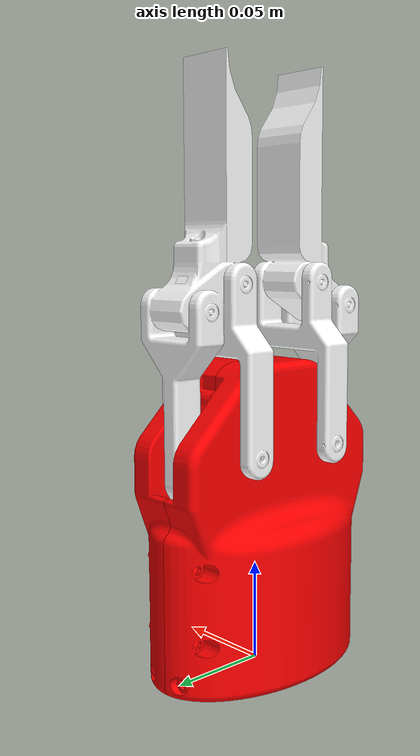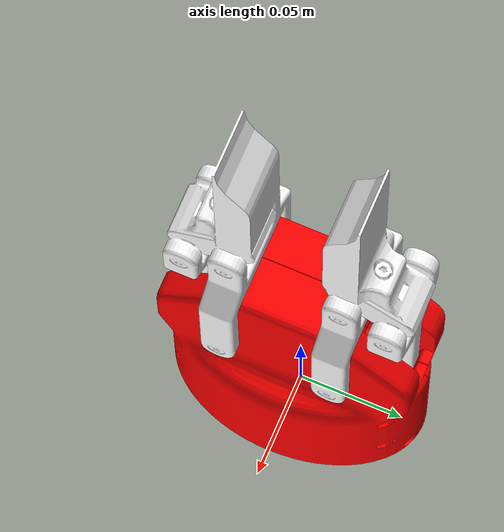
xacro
<?xml version="1.0" ?>

<robot name="gripper" xmlns:xacro="http://ros.org/wiki/xacro">

<xacro:include filename="$(find apc_gripper_position)/urdf/joints.xacro"/>
<xacro:include filename="$(find apc_gripper_position)/urdf/gripper.gazebo"/>

  <!-- BASE LINK -->

    <link name="gripper_body">
      <inertial>
        <mass value="0.1" />
        <origin rpy="0 0 0" xyz="0 0 0" />
        <inertia ixx="0.13292157" ixy="0.0" ixz="0" iyy="0.8980362" iyz="0" izz="0.6991288" />
      </inertial>
      <collision>
        <origin rpy="0 0 0" xyz="0 0 0" />
        <geometry>
          <mesh filename="package://apc_gripper_position/meshes/mesh_soporte.stl" scale="0.001 0.001 0.001"/>
        </geometry>
      </collision>
      <visual>
        <origin rpy="0 0 0" xyz="0 0 0" />
        <geometry>
          <mesh filename="package://apc_gripper_position/meshes/mesh_soporte.stl" scale="0.001 0.001 0.001"/>
        </geometry>
        <material name="red">
         <color rgba="1 0 0 1"/>
        </material>
      </visual>
    </link>

  <!-- LINKS -->

  <link name="left_ext">
      <inertial>
        <mass value="0.1" />
        <origin rpy="0 0 0" xyz="0 0 0" />
        <inertia ixx="0.0000847702" ixy="0" ixz="0" iyy="0.0000955040" iyz="0" izz="0.0000331406" />
      </inertial>
      <collision>
        <origin rpy="0 0 0" xyz="0 0 0" />
        <geometry>
          <mesh filename="package://apc_gripper_position/meshes/mesh_dedo_eslabon.stl" scale="0.001 0.001 0.001"/>
        </geometry>
      </collision>
      <visual>
        <origin rpy="0 0 0" xyz="0 0 0" />
        <geometry>
          <mesh filename="package://apc_gripper_position/meshes/mesh_dedo_eslabon.stl" scale="0.001 0.001 0.001"/>
        </geometry>
        <material name="white">
         <color rgba="1 1 1 1"/>
        </material>
      </visual>
    </link>

  <link name="right_ext">
      <inertial>
        <mass value="0.1" />
        <origin rpy="0 0 ${pi}" xyz="0 0 0" />
        <inertia ixx="0.0000847702" ixy="0" ixz="0" iyy="0.0000955040" iyz="0" izz="0.0000331406" />
      </inertial>
      <collision>
        <origin rpy="0 0 ${pi}" xyz="0 0 0" />
        <geometry>
          <mesh filename="package://apc_gripper_position/meshes/mesh_dedo_eslabon.stl" scale="0.001 0.001 0.001"/>
        </geometry>
      </collision>
      <visual>
        <origin rpy="0 0 ${pi}" xyz="0 0 0" />
        <geometry>
          <mesh filename="package://apc_gripper_position/meshes/mesh_dedo_eslabon.stl" scale="0.001 0.001 0.001"/>
        </geometry>
        <material name="white">
         <color rgba="1 1 1 1"/>
        </material>
      </visual>
    </link>

</robot>

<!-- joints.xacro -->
<robot xmlns:xacro="http://ros.org/wiki/xacro">

  <!-- LINKS_BASE JOINTS -->

    <joint name="gripper_body__left_ext" type="prismatic">
      <axis xyz="0 1 0" />
      <limit effort="1000" lower="-0.1" upper="0.1" velocity="0.5" />
      <origin rpy="0 0 0" xyz="0.0 -0.046785 0.101" />
      <parent link="gripper_body" />
      <child link="left_ext" />
    </joint>
    <transmission name="trans_gripper_body__left_ext">
      <type>transmission_interface/SimpleTransmission</type>
      <joint name="gripper_body__left_ext">
        <hardwareInterface>hardware_interface/PositionJointInterface</hardwareInterface>
      </joint>
      <actuator name="motor_gripper_body__left_ext">
        <hardwareInterface>hardware_interface/PositionJointInterface</hardwareInterface>
        <mechanicalReduction>1</mechanicalReduction>
      </actuator>
    </transmission>

    <joint name="gripper_body__right_ext" type="prismatic">
      <axis xyz="0 1 0" />
      <limit effort="1000" lower="-0.1" upper="0.1" velocity="0.5" />
      <origin rpy="0 0 0" xyz="0.0 0.046785 0.101" />
      <parent link="gripper_body" />
      <child link="right_ext" />
    </joint>
    <transmission name="trans_gripper_body__right_ext">
      <type>transmission_interface/SimpleTransmission</type>
      <joint name="gripper_body__right_ext">
        <hardwareInterface>hardware_interface/PositionJointInterface</hardwareInterface>
      </joint>
      <actuator name="motor_gripper_body__right_ext">
        <hardwareInterface>hardware_interface/PositionJointInterface</hardwareInterface>
        <mechanicalReduction>1</mechanicalReduction>
      </actuator>
    </transmission>

  <!-- END - Robot description -->

</robot>
